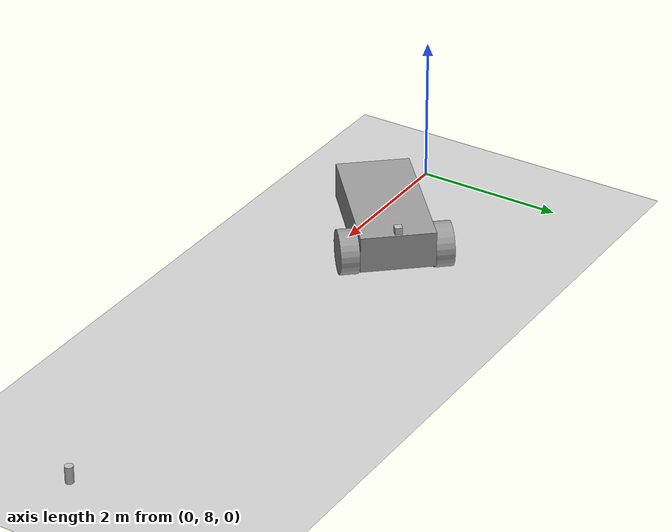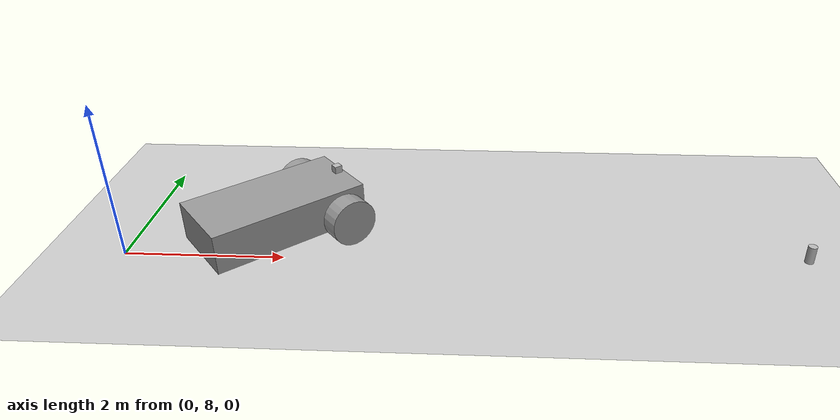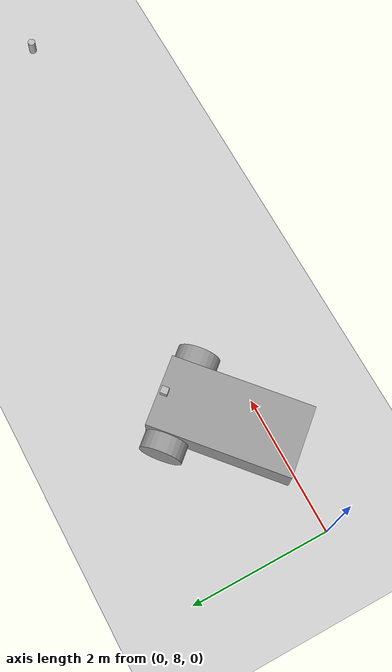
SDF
<sdf version="1.6">
 <world name="default">
  <model name="ground_plane">
   <static>1</static>
   <link name="link">
    <collision name="collision">
     <geometry><plane><normal>0 0 1</normal><size>100 100</size></plane></geometry>
     <surface>
      <contact><collide_bitmask>65535</collide_bitmask></contact>
      <friction><ode><mu>100</mu><mu2>50</mu2></ode></friction>
     </surface>
    </collision>
    <visual name="visual">
     <cast_shadows>0</cast_shadows>
     <geometry><plane><normal>0 0 1</normal><size>100 100</size></plane></geometry>
     <material>
      <script><uri>file://media/materials/scripts/gazebo.material</uri><name>Gazebo/Grey</name></script>
     </material>
    </visual>
   </link>
  </model>
  <model name="robot_car_0">
   <link name="link_1">
    <pose>-0.303354 -0.001131 0.03138 0 -0 0</pose>
    <inertial>
     <mass>1</mass>
     <inertia>
      <ixx>0.166667</ixx>
      <ixy>0</ixy>
      <ixz>0</ixz>
      <iyy>0.166667</iyy>
      <iyz>0</iyz>
      <izz>0.166667</izz>
     </inertia>
    </inertial>
    <visual name="visual">
     <geometry><box><size>2 1 0.5</size></box></geometry>
     <material>
      <lighting>1</lighting>
      <script><uri>file://media/materials/scripts/gazebo.material</uri><name>Gazebo/Grey</name></script>
      <shader type="pixel"><normal_map>__default__</normal_map></shader>
      <ambient>0.3 0.3 0.3 1</ambient>
      <diffuse>0.7 0.7 0.7 1</diffuse>
      <specular>0.01 0.01 0.01 1</specular>
      <emissive>0 0 0 1</emissive>
     </material>
    </visual>
    <collision name="collision">
     <geometry><box><size>2 1 0.5</size></box></geometry>
     <surface>
      <friction>
       <ode><mu>1</mu><mu2>1</mu2><fdir1>0 0 0</fdir1><slip1>0</slip1><slip2>0</slip2></ode>
       <torsional>
        <coefficient>1</coefficient>
        <patch_radius>0</patch_radius>
        <surface_radius>0</surface_radius>
        <use_patch_radius>1</use_patch_radius>
        <ode><slip>0</slip></ode>
       </torsional>
      </friction>
      <bounce><restitution_coefficient>0</restitution_coefficient><threshold>1e+06</threshold></bounce>
      <contact>
       <collide_without_contact>0</collide_without_contact>
       <collide_without_contact_bitmask>1</collide_without_contact_bitmask>
       <collide_bitmask>1</collide_bitmask>
       <ode>
        <soft_cfm>0</soft_cfm>
        <soft_erp>0.2</soft_erp>
        <kp>1e+13</kp>
        <kd>1</kd>
        <max_vel>0.01</max_vel>
        <min_depth>0</min_depth>
       </ode>
       <bullet>
        <split_impulse>1</split_impulse>
        <split_impulse_penetration_threshold>-0.01</split_impulse_penetration_threshold>
        <soft_cfm>0</soft_cfm>
        <soft_erp>0.2</soft_erp>
        <kp>1e+13</kp>
        <kd>1</kd>
       </bullet>
      </contact>
     </surface>
    </collision>
   </link>
   <link name="link_2">
    <pose>0.396646 -0.62616 -0.06862 1.5707 -0 0</pose>
    <inertial>
     <mass>1</mass>
     <inertia><ixx>0.145833</ixx><ixy>0</ixy><ixz>0</ixz><iyy>0.145833</iyy><iyz>0</iyz><izz>0.125</izz></inertia>
    </inertial>
    <visual name="visual">
     <geometry><cylinder><radius>0.3</radius><length>0.25</length></cylinder></geometry>
     <material>
      <lighting>1</lighting>
      <script><uri>file://media/materials/scripts/gazebo.material</uri><name>Gazebo/Grey</name></script>
      <shader type="pixel"><normal_map>__default__</normal_map></shader>
      <ambient>0.3 0.3 0.3 1</ambient>
      <diffuse>0.7 0.7 0.7 1</diffuse>
      <specular>0.01 0.01 0.01 1</specular>
      <emissive>0 0 0 1</emissive>
     </material>
    </visual>
    <collision name="collision">
     <geometry><cylinder><radius>0.3</radius><length>0.25</length></cylinder></geometry>
     <surface>
      <friction>
       <ode><mu>1</mu><mu2>1</mu2><fdir1>0 0 0</fdir1><slip1>0</slip1><slip2>0</slip2></ode>
       <torsional>
        <coefficient>1</coefficient>
        <patch_radius>0</patch_radius>
        <surface_radius>0</surface_radius>
        <use_patch_radius>1</use_patch_radius>
        <ode><slip>0</slip></ode>
       </torsional>
      </friction>
      <bounce><restitution_coefficient>0</restitution_coefficient><threshold>1e+06</threshold></bounce>
      <contact>
       <collide_without_contact>0</collide_without_contact>
       <collide_without_contact_bitmask>1</collide_without_contact_bitmask>
       <collide_bitmask>1</collide_bitmask>
       <ode>
        <soft_cfm>0</soft_cfm>
        <soft_erp>0.2</soft_erp>
        <kp>1e+13</kp>
        <kd>1</kd>
        <max_vel>0.01</max_vel>
        <min_depth>0</min_depth>
       </ode>
       <bullet>
        <split_impulse>1</split_impulse>
        <split_impulse_penetration_threshold>-0.01</split_impulse_penetration_threshold>
        <soft_cfm>0</soft_cfm>
        <soft_erp>0.2</soft_erp>
        <kp>1e+13</kp>
        <kd>1</kd>
       </bullet>
      </contact>
     </surface>
    </collision>
   </link>
   <link name="link_2_clone">
    <pose>0.396646 0.623898 -0.06862 1.5707 -0 0</pose>
    <inertial>
     <mass>1</mass>
     <inertia><ixx>0.145833</ixx><ixy>0</ixy><ixz>0</ixz><iyy>0.145833</iyy><iyz>0</iyz><izz>0.125</izz></inertia>
    </inertial>
    <visual name="visual">
     <geometry><cylinder><radius>0.3</radius><length>0.25</length></cylinder></geometry>
     <material>
      <lighting>1</lighting>
      <script><uri>file://media/materials/scripts/gazebo.material</uri><name>Gazebo/Grey</name></script>
      <shader type="pixel"><normal_map>__default__</normal_map></shader>
      <ambient>0.3 0.3 0.3 1</ambient>
      <diffuse>0.7 0.7 0.7 1</diffuse>
      <specular>0.01 0.01 0.01 1</specular>
      <emissive>0 0 0 1</emissive>
     </material>
    </visual>
    <collision name="collision">
     <geometry><cylinder><radius>0.3</radius><length>0.25</length></cylinder></geometry>
     <surface>
      <friction>
       <ode><mu>1</mu><mu2>1</mu2><fdir1>0 0 0</fdir1><slip1>0</slip1><slip2>0</slip2></ode>
       <torsional>
        <coefficient>1</coefficient>
        <patch_radius>0</patch_radius>
        <surface_radius>0</surface_radius>
        <use_patch_radius>1</use_patch_radius>
        <ode><slip>0</slip></ode>
       </torsional>
      </friction>
      <bounce><restitution_coefficient>0</restitution_coefficient><threshold>1e+06</threshold></bounce>
      <contact>
       <collide_without_contact>0</collide_without_contact>
       <collide_without_contact_bitmask>1</collide_without_contact_bitmask>
       <collide_bitmask>1</collide_bitmask>
       <ode>
        <soft_cfm>0</soft_cfm>
        <soft_erp>0.2</soft_erp>
        <kp>1e+13</kp>
        <kd>1</kd>
        <max_vel>0.01</max_vel>
        <min_depth>0</min_depth>
       </ode>
       <bullet>
        <split_impulse>1</split_impulse>
        <split_impulse_penetration_threshold>-0.01</split_impulse_penetration_threshold>
        <soft_cfm>0</soft_cfm>
        <soft_erp>0.2</soft_erp>
        <kp>1e+13</kp>
        <kd>1</kd>
       </bullet>
      </contact>
     </surface>
    </collision>
   </link>
   <link name="link_3">
    <pose>-1.10335 -0.001131 -0.16862 0 -0 0</pose>
    <inertial>
     <mass>1</mass>
     <inertia><ixx>0.1</ixx><ixy>0</ixy><ixz>0</ixz><iyy>0.1</iyy><iyz>0</iyz><izz>0.1</izz></inertia>
    </inertial>
    <visual name="visual">
     <geometry><sphere><radius>0.2</radius></sphere></geometry>
     <material>
      <lighting>1</lighting>
      <script><uri>file://media/materials/scripts/gazebo.material</uri><name>Gazebo/Grey</name></script>
      <shader type="pixel"><normal_map>__default__</normal_map></shader>
      <ambient>0.3 0.3 0.3 1</ambient>
      <diffuse>0.7 0.7 0.7 1</diffuse>
      <specular>0.01 0.01 0.01 1</specular>
      <emissive>0 0 0 1</emissive>
     </material>
    </visual>
    <collision name="collision">
     <geometry><sphere><radius>0.2</radius></sphere></geometry>
     <surface>
      <friction>
       <ode><mu>1</mu><mu2>1</mu2><fdir1>0 0 0</fdir1><slip1>0</slip1><slip2>0</slip2></ode>
       <torsional>
        <coefficient>1</coefficient>
        <patch_radius>0</patch_radius>
        <surface_radius>0</surface_radius>
        <use_patch_radius>1</use_patch_radius>
        <ode><slip>0</slip></ode>
       </torsional>
      </friction>
      <bounce><restitution_coefficient>0</restitution_coefficient><threshold>1e+06</threshold></bounce>
      <contact>
       <collide_without_contact>0</collide_without_contact>
       <collide_without_contact_bitmask>1</collide_without_contact_bitmask>
       <collide_bitmask>1</collide_bitmask>
       <ode>
        <soft_cfm>0</soft_cfm>
        <soft_erp>0.2</soft_erp>
        <kp>1e+13</kp>
        <kd>1</kd>
        <max_vel>0.01</max_vel>
        <min_depth>0</min_depth>
       </ode>
       <bullet>
        <split_impulse>1</split_impulse>
        <split_impulse_penetration_threshold>-0.01</split_impulse_penetration_threshold>
        <soft_cfm>0</soft_cfm>
        <soft_erp>0.2</soft_erp>
        <kp>1e+13</kp>
        <kd>1</kd>
       </bullet>
      </contact>
     </surface>
    </collision>
   </link>
   <model name="depth_camera">
    <link name="link">
     <pose>0 0 0.05 0 -0 0</pose>
     <inertial>
      <mass>0.1</mass>
      <inertia>
       <ixx>0.000166667</ixx>
       <iyy>0.000166667</iyy>
       <izz>0.000166667</izz>
       <ixy>0</ixy>
       <ixz>0</ixz>
       <iyz>0</iyz>
      </inertia>
     </inertial>
     <collision name="collision"><geometry><box><size>0.1 0.1 0.1</size></box></geometry></collision>
     <visual name="visual"><geometry><box><size>0.1 0.1 0.1</size></box></geometry></visual>
     <sensor name="camera" type="depth">
      <camera name="__default__">
       <horizontal_fov>1.047</horizontal_fov>
       <image><width>320</width><height>240</height></image>
       <clip><near>0.1</near><far>100</far></clip>
      </camera>
      <always_on>1</always_on>
      <update_rate>30</update_rate>
      <visualize>1</visualize>
     </sensor>
    </link>
    <pose>0.613416 0.004522 0.27448 0 -0 0</pose>
   </model>
   <joint name="link_1_JOINT_0" type="revolute">
    <parent>link_1</parent>
    <child>link_2</child>
    <axis>
     <xyz>0 0 1</xyz>
     <use_parent_model_frame>0</use_parent_model_frame>
     <limit>
      <lower>-1.79769e+308</lower>
      <upper>1.79769e+308</upper>
      <effort>-1</effort>
      <velocity>-1</velocity>
     </limit>
     <dynamics>
      <spring_reference>0</spring_reference>
      <spring_stiffness>0</spring_stiffness>
      <damping>0</damping>
     </dynamics>
    </axis>
    <physics>
     <ode><limit><cfm>0</cfm><erp>0.2</erp></limit><suspension><cfm>0</cfm><erp>0.2</erp></suspension></ode>
    </physics>
   </joint>
   <joint name="link_1_JOINT_1" type="revolute">
    <parent>link_1</parent>
    <child>link_2_clone</child>
    <axis>
     <xyz>0 0 1</xyz>
     <use_parent_model_frame>0</use_parent_model_frame>
     <limit>
      <lower>-1.79769e+308</lower>
      <upper>1.79769e+308</upper>
      <effort>-1</effort>
      <velocity>-1</velocity>
     </limit>
     <dynamics>
      <spring_reference>0</spring_reference>
      <spring_stiffness>0</spring_stiffness>
      <damping>0</damping>
     </dynamics>
    </axis>
    <physics>
     <ode><limit><cfm>0</cfm><erp>0.2</erp></limit><suspension><cfm>0</cfm><erp>0.2</erp></suspension></ode>
    </physics>
   </joint>
   <joint name="link_1_JOINT_3" type="ball">
    <parent>link_1</parent>
    <child>link_3</child>
    <physics>
     <ode><limit><cfm>0</cfm><erp>0.2</erp></limit><suspension><cfm>0</cfm><erp>0.2</erp></suspension></ode>
    </physics>
   </joint>
   <joint name="link_1_JOINT_5" type="fixed">
    <parent>link_1</parent>
    <child>depth_camera::link</child>
    <pose>0 0 0 0 -0.01 0</pose>
    <physics>
     <ode><limit><cfm>0</cfm><erp>0.2</erp></limit><suspension><cfm>0</cfm><erp>0.2</erp></suspension></ode>
    </physics>
   </joint>
   <static>0</static>
   <pose>2.04978 8.65178 0.368627 3e-06 -6e-06 0.72015</pose>
  </model>
  <model name="beer">
   <link name="link">
    <pose>0 0 0.115 0 -0 0</pose>
    <inertial>
     <mass>0.39</mass>
     <inertia><ixx>0.00058</ixx><ixy>0</ixy><ixz>0</ixz><iyy>0.00058</iyy><iyz>0</iyz><izz>0.00019</izz></inertia>
    </inertial>
    <collision name="collision">
     <geometry><cylinder><radius>0.055</radius><length>0.23</length></cylinder></geometry>
    </collision>
    <visual name="visual">
     <geometry><cylinder><radius>0.055</radius><length>0.23</length></cylinder></geometry>
     <material>
      <script>
       <uri>model://beer/materials/scripts</uri>
       <uri>model://beer/materials/textures</uri>
       <name>Beer/Diffuse</name>
      </script>
     </material>
    </visual>
   </link>
   <pose>8.44687 8.20103 -2e-06 0 0 -2.2e-05</pose>
  </model>
 </world>
</sdf>
